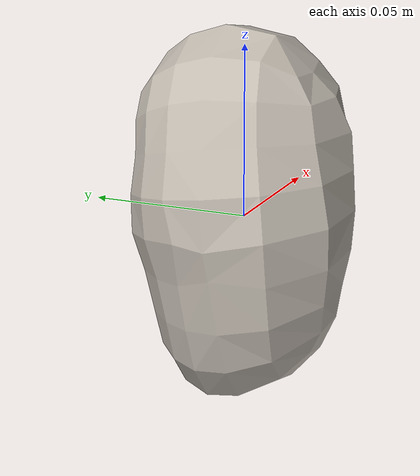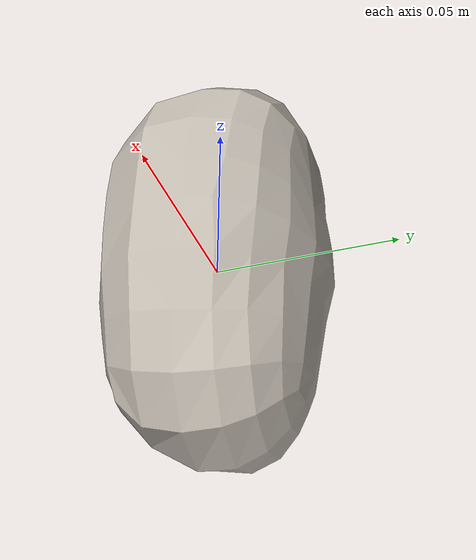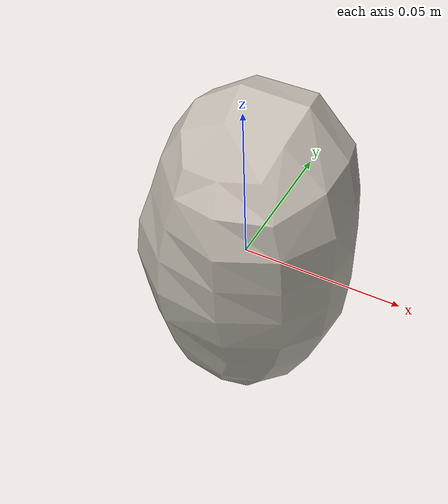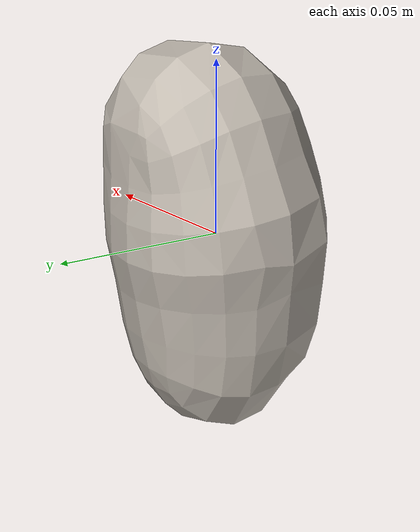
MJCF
<mujoco model="Potato_11">
  <compiler autolimits="true" boundmass="0.01" angle="radian"/>
  <default>
    <default class="/">
      <default class="__VISUAL_MJT__">
        <geom contype="0" conaffinity="0" group="0"/>
      </default>
      <default class="__STRUCTURAL_MJT__">
        <geom contype="8" conaffinity="15" group="4" friction="0.90000000000000002 0.90000000000000002 0.001" solref="0.025000000000000001 1" solimp="0.998 0.998 0.001"/>
      </default>
      <default class="__DYNAMIC_MJT__">
        <geom contype="1" conaffinity="15" group="4" friction="0.90000000000000002 0.90000000000000002 0.001" solref="0.025000000000000001 1" solimp="0.998 0.998 0.001"/>
      </default>
    </default>
  </default>
  <asset>
    <texture name="Potato2_Mat1" type="2d" file="Potato2_AlbedoTransparency.png"/>
    <material name="material_Potato2_Mat1" class="/" texture="Potato2_Mat1" specular="0.5" shininess="0.5" rgba="1 1 1 1"/>
    <mesh name="Potato_11_potato_b1" class="/" file="Potato_11_potato_b1/Potato_11_potato_b1.obj" scale="1 1 1"/>
  </asset>
  <worldbody>
    <body name="Potato_11">
      <joint name="Potato_11_free" class="/" type="free" pos="0 0 0" axis="0 0 1" stiffness="0" range="0 0" armature="0" damping="0.10000000000000001" frictionloss="0"/>
      <body name="Potato_11_potato_b1" pos="6.0000000000000002e-05 -0.00097618530273437497 0.00021430511474609376" quat="0.99772679805755615 -0.067388460040092468 0 0">
        <geom name="Potato_11_potato_b1" class="__VISUAL_MJT__" type="mesh" material="material_Potato2_Mat1" shellinertia="true" mesh="Potato_11_potato_b1"/>
        <geom name="Potato_11_PrimitiveCollider_0" class="__DYNAMIC_MJT__" type="capsule" size="0.034013789147138596 0.023325856775045395" rgba="0 1 0 1" pos="6.29425048828125e-05 0.00098008301574736834 -0.00019526469986885786" quat="1.0087576610494614e-16 1 0 0"/>
      </body>
    </body>
  </worldbody>
</mujoco>
